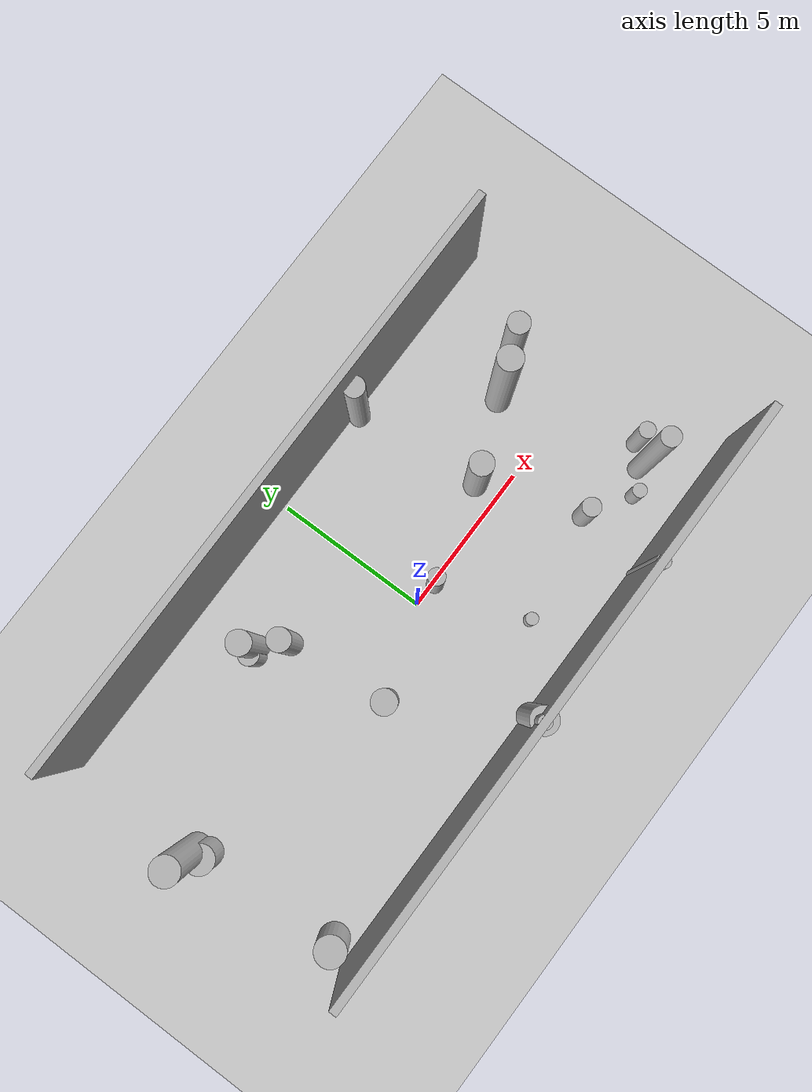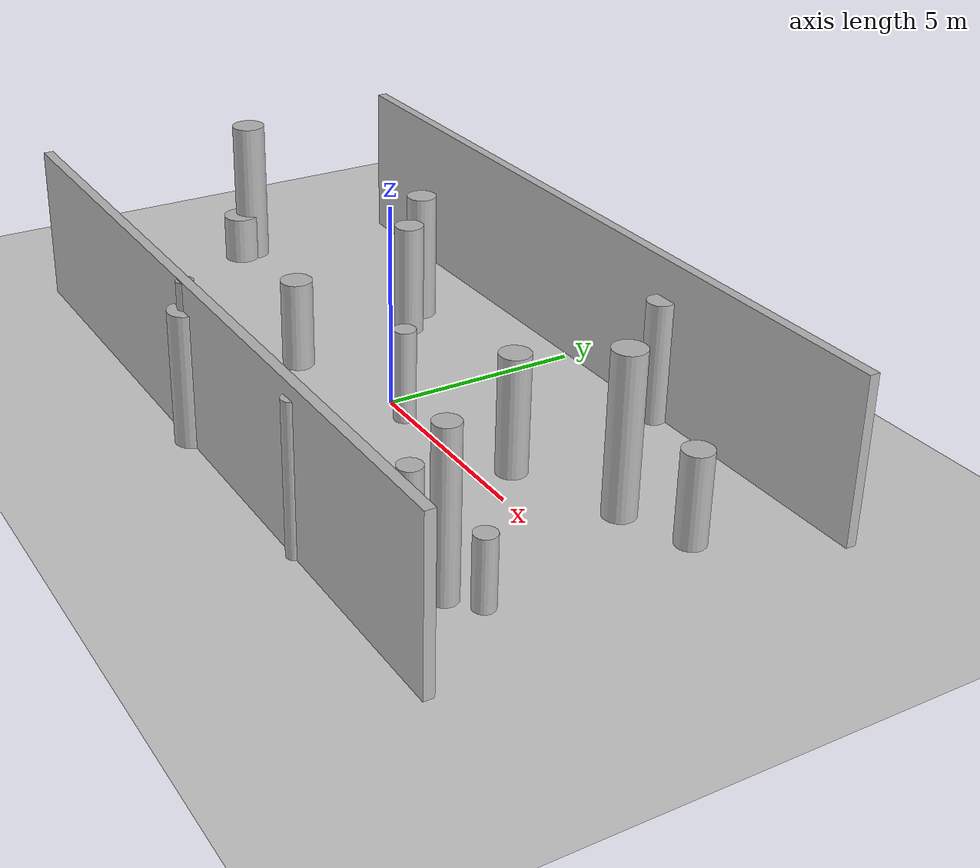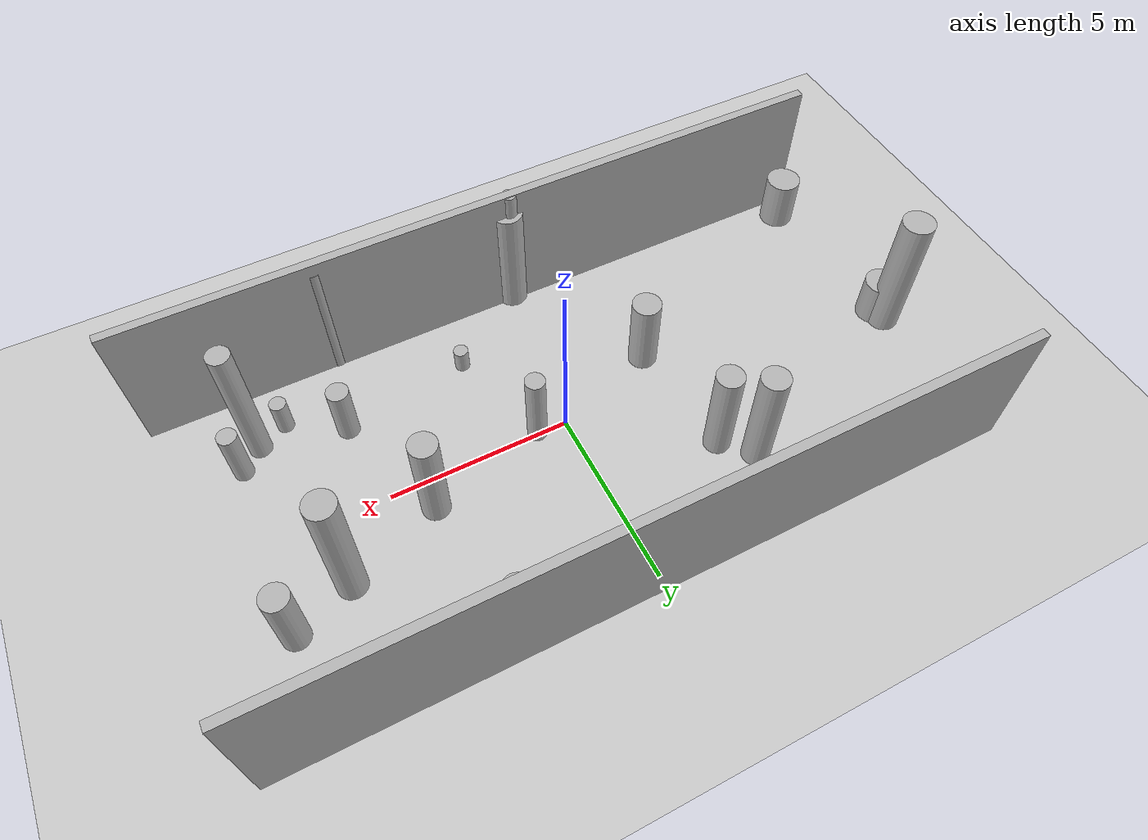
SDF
<?xml version="1.0"?>
<sdf version="1.4">
  <world name="default">
    <gui>
      <camera name="user_camera">
        <pose>-20 -30 40 0 0.66 0.83</pose>
      </camera>
    </gui>
    <include>
      <uri>model://ground_plane</uri>
    </include>
    <include>
      <uri>model://sun</uri>
    </include>
    <scene>
      <shadows>0</shadows>
    </scene>
    <model name="forest">
      <static>true</static>
      <link name="cylinder0">
        <pose>-4.22140195256995 2.9693953491330607 0.7673654700417909 0 0 0 </pose>
        <visual name="visual">
          <geometry>
            <cylinder>
              <radius>0.32513270754656387</radius>
              <length>1.5347309400835818</length>
            </cylinder>
          </geometry>
        </visual>
        <collision name="collision">
          <geometry>
            <cylinder>
              <radius>0.32513270754656387</radius>
              <length>1.5347309400835818</length>
            </cylinder>
          </geometry>
          <max_contacts>0</max_contacts>
        </collision>
      </link>
      <link name="cylinder1">
        <pose>6.69936217976251 -3.3379592736394126 0.5155097487495023 0 0 0 </pose>
        <visual name="visual">
          <geometry>
            <cylinder>
              <radius>0.22483915440210314</radius>
              <length>1.0310194974990046</length>
            </cylinder>
          </geometry>
        </visual>
        <collision name="collision">
          <geometry>
            <cylinder>
              <radius>0.22483915440210314</radius>
              <length>1.0310194974990046</length>
            </cylinder>
          </geometry>
          <max_contacts>0</max_contacts>
        </collision>
      </link>
      <link name="cylinder2">
        <pose>-3.980499537961057 3.118205004564091 1.6649322518250929 0 0 0 </pose>
        <visual name="visual">
          <geometry>
            <cylinder>
              <radius>0.37755121959288984</radius>
              <length>3.3298645036501857</length>
            </cylinder>
          </geometry>
        </visual>
        <collision name="collision">
          <geometry>
            <cylinder>
              <radius>0.37755121959288984</radius>
              <length>3.3298645036501857</length>
            </cylinder>
          </geometry>
          <max_contacts>0</max_contacts>
        </collision>
      </link>
      <link name="cylinder3">
        <pose>7.501450399276273 -2.94772788276802 1.9937623455073665 0 0 0 </pose>
        <visual name="visual">
          <geometry>
            <cylinder>
              <radius>0.3032298284374912</radius>
              <length>3.987524691014733</length>
            </cylinder>
          </geometry>
        </visual>
        <collision name="collision">
          <geometry>
            <cylinder>
              <radius>0.3032298284374912</radius>
              <length>3.987524691014733</length>
            </cylinder>
          </geometry>
          <max_contacts>0</max_contacts>
        </collision>
      </link>
      <link name="cylinder4">
        <pose>0.8125476591777119 -0.07397704593186116 1.1627956550477658 0 0 0 </pose>
        <visual name="visual">
          <geometry>
            <cylinder>
              <radius>0.26908365494539116</radius>
              <length>2.3255913100955317</length>
            </cylinder>
          </geometry>
        </visual>
        <collision name="collision">
          <geometry>
            <cylinder>
              <radius>0.26908365494539116</radius>
              <length>2.3255913100955317</length>
            </cylinder>
          </geometry>
          <max_contacts>0</max_contacts>
        </collision>
      </link>
      <link name="cylinder5">
        <pose>-9.462119491491059 -4.007179068391496 0.7569061786253588 0 0 0 </pose>
        <visual name="visual">
          <geometry>
            <cylinder>
              <radius>0.48685774095511075</radius>
              <length>1.5138123572507176</length>
            </cylinder>
          </geometry>
        </visual>
        <collision name="collision">
          <geometry>
            <cylinder>
              <radius>0.48685774095511075</radius>
              <length>1.5138123572507176</length>
            </cylinder>
          </geometry>
          <max_contacts>0</max_contacts>
        </collision>
      </link>
      <link name="cylinder6">
        <pose>-3.2734318728813117 2.3511744955764655 1.4586800079420188 0 0 0 </pose>
        <visual name="visual">
          <geometry>
            <cylinder>
              <radius>0.3671709679027445</radius>
              <length>2.9173600158840376</length>
            </cylinder>
          </geometry>
        </visual>
        <collision name="collision">
          <geometry>
            <cylinder>
              <radius>0.3671709679027445</radius>
              <length>2.9173600158840376</length>
            </cylinder>
          </geometry>
          <max_contacts>0</max_contacts>
        </collision>
      </link>
      <link name="cylinder7">
        <pose>1.6878064776093016 -3.051773990040396 0.3340564758809802 0 0 0 </pose>
        <visual name="visual">
          <geometry>
            <cylinder>
              <radius>0.20196803302084876</radius>
              <length>0.6681129517619604</length>
            </cylinder>
          </geometry>
        </visual>
        <collision name="collision">
          <geometry>
            <cylinder>
              <radius>0.20196803302084876</radius>
              <length>0.6681129517619604</length>
            </cylinder>
          </geometry>
          <max_contacts>0</max_contacts>
        </collision>
      </link>
      <link name="cylinder8">
        <pose>-0.6755875439413721 -4.791212237863608 1.650646823894981 0 0 0 </pose>
        <visual name="visual">
          <geometry>
            <cylinder>
              <radius>0.4250056165888985</radius>
              <length>3.301293647789962</length>
            </cylinder>
          </geometry>
        </visual>
        <collision name="collision">
          <geometry>
            <cylinder>
              <radius>0.4250056165888985</radius>
              <length>3.301293647789962</length>
            </cylinder>
          </geometry>
          <max_contacts>0</max_contacts>
        </collision>
      </link>
      <link name="cylinder9">
        <pose>-9.736262892410238 0.54559815762242 0.6384930433481346 0 0 0 </pose>
        <visual name="visual">
          <geometry>
            <cylinder>
              <radius>0.47432291091010453</radius>
              <length>1.2769860866962692</length>
            </cylinder>
          </geometry>
        </visual>
        <collision name="collision">
          <geometry>
            <cylinder>
              <radius>0.47432291091010453</radius>
              <length>1.2769860866962692</length>
            </cylinder>
          </geometry>
          <max_contacts>0</max_contacts>
        </collision>
      </link>
      <link name="cylinder10">
        <pose>3.652441770911656 4.983763364815868 1.5266805502251188 0 0 0 </pose>
        <visual name="visual">
          <geometry>
            <cylinder>
              <radius>0.3357606744758535</radius>
              <length>3.0533611004502377</length>
            </cylinder>
          </geometry>
        </visual>
        <collision name="collision">
          <geometry>
            <cylinder>
              <radius>0.3357606744758535</radius>
              <length>3.0533611004502377</length>
            </cylinder>
          </geometry>
          <max_contacts>0</max_contacts>
        </collision>
      </link>
      <link name="cylinder11">
        <pose>4.073772382316083 0.7968019498967358 1.4724915230352416 0 0 0 </pose>
        <visual name="visual">
          <geometry>
            <cylinder>
              <radius>0.37473341307175817</radius>
              <length>2.944983046070483</length>
            </cylinder>
          </geometry>
        </visual>
        <collision name="collision">
          <geometry>
            <cylinder>
              <radius>0.37473341307175817</radius>
              <length>2.944983046070483</length>
            </cylinder>
          </geometry>
          <max_contacts>0</max_contacts>
        </collision>
      </link>
      <link name="cylinder12">
        <pose>5.24399174432784 -2.4519851360586555 0.8629859475899062 0 0 0 </pose>
        <visual name="visual">
          <geometry>
            <cylinder>
              <radius>0.2984256126549073</radius>
              <length>1.7259718951798124</length>
            </cylinder>
          </geometry>
        </visual>
        <collision name="collision">
          <geometry>
            <cylinder>
              <radius>0.2984256126549073</radius>
              <length>1.7259718951798124</length>
            </cylinder>
          </geometry>
          <max_contacts>0</max_contacts>
        </collision>
      </link>
      <link name="cylinder13">
        <pose>6.667786776547132 1.8334058756549059 1.9737070764087732 0 0 0 </pose>
        <visual name="visual">
          <geometry>
            <cylinder>
              <radius>0.3935021010506933</radius>
              <length>3.9474141528175464</length>
            </cylinder>
          </geometry>
        </visual>
        <collision name="collision">
          <geometry>
            <cylinder>
              <radius>0.3935021010506933</radius>
              <length>3.9474141528175464</length>
            </cylinder>
          </geometry>
          <max_contacts>0</max_contacts>
        </collision>
      </link>
      <link name="cylinder14">
        <pose>8.263517062890063 2.473000882357562 1.1136085392339403 0 0 0 </pose>
        <visual name="visual">
          <geometry>
            <cylinder>
              <radius>0.35981302144921856</radius>
              <length>2.2272170784678806</length>
            </cylinder>
          </geometry>
        </visual>
        <collision name="collision">
          <geometry>
            <cylinder>
              <radius>0.35981302144921856</radius>
              <length>2.2272170784678806</length>
            </cylinder>
          </geometry>
          <max_contacts>0</max_contacts>
        </collision>
      </link>
      <link name="cylinder15">
        <pose>8.098638636930573 -2.41676983285135 0.8555880080313016 0 0 0 </pose>
        <visual name="visual">
          <geometry>
            <cylinder>
              <radius>0.26034933774699187</radius>
              <length>1.7111760160626033</length>
            </cylinder>
          </geometry>
        </visual>
        <collision name="collision">
          <geometry>
            <cylinder>
              <radius>0.26034933774699187</radius>
              <length>1.7111760160626033</length>
            </cylinder>
          </geometry>
          <max_contacts>0</max_contacts>
        </collision>
      </link>
      <link name="cylinder16">
        <pose>-2.922267416764079 -1.0102281425887782 1.14236389939572 0 0 0 </pose>
        <visual name="visual">
          <geometry>
            <cylinder>
              <radius>0.3972091359699262</radius>
              <length>2.28472779879144</length>
            </cylinder>
          </geometry>
        </visual>
        <collision name="collision">
          <geometry>
            <cylinder>
              <radius>0.3972091359699262</radius>
              <length>2.28472779879144</length>
            </cylinder>
          </geometry>
          <max_contacts>0</max_contacts>
        </collision>
      </link>
      <link name="cylinder17">
        <pose>-9.815668924181962 0.9125863107409291 1.9189480281497264 0 0 0 </pose>
        <visual name="visual">
          <geometry>
            <cylinder>
              <radius>0.4412135620062479</radius>
              <length>3.837896056299453</length>
            </cylinder>
          </geometry>
        </visual>
        <collision name="collision">
          <geometry>
            <cylinder>
              <radius>0.4412135620062479</radius>
              <length>3.837896056299453</length>
            </cylinder>
          </geometry>
          <max_contacts>0</max_contacts>
        </collision>
      </link>
      <link name="cylinder18">
        <pose>-0.7436216783738878 -4.742511883173259 1.9845708134905662 0 0 0 </pose>
        <visual name="visual">
          <geometry>
            <cylinder>
              <radius>0.20585398108236885</radius>
              <length>3.9691416269811324</length>
            </cylinder>
          </geometry>
        </visual>
        <collision name="collision">
          <geometry>
            <cylinder>
              <radius>0.20585398108236885</radius>
              <length>3.9691416269811324</length>
            </cylinder>
          </geometry>
          <max_contacts>0</max_contacts>
        </collision>
      </link>
      <link name="cylinder19">
        <pose>4.702472114313778 -4.806185749537634 1.8220203051447879 0 0 0 </pose>
        <visual name="visual">
          <geometry>
            <cylinder>
              <radius>0.2148194306744898</radius>
              <length>3.6440406102895757</length>
            </cylinder>
          </geometry>
        </visual>
        <collision name="collision">
          <geometry>
            <cylinder>
              <radius>0.2148194306744898</radius>
              <length>3.6440406102895757</length>
            </cylinder>
          </geometry>
          <max_contacts>0</max_contacts>
        </collision>
      </link>
      <link name="cube0">
        <pose>0 5.25 2.0 0 0 0 </pose>
        <visual name="visual">
          <geometry>
            <box>
              <size>20 0.25 4.0</size>
            </box>
          </geometry>
        </visual>
        <collision name="collision">
          <geometry>
            <box>
              <size>20 0.25 4.0</size>
            </box>
          </geometry>
          <max_contacts>0</max_contacts>
        </collision>
      </link>
      <link name="cube1">
        <pose>0 -4.75 2.0 0 0 0 </pose>
        <visual name="visual">
          <geometry>
            <box>
              <size>20 0.25 4.0</size>
            </box>
          </geometry>
        </visual>
        <collision name="collision">
          <geometry>
            <box>
              <size>20 0.25 4.0</size>
            </box>
          </geometry>
          <max_contacts>0</max_contacts>
        </collision>
      </link>
    </model>
    <!-- Plugins -->
    <plugin name="gazebo_octomap" filename="librotors_gazebo_octomap_plugin.so"/>
    <plugin name="ros_interface_plugin" filename="librotors_gazebo_ros_interface_plugin.so"/>
    <!-- Physics -->
    <physics name="default_physics" default="0" type="ode">
      <max_step_size>0.004</max_step_size>
      <real_time_factor>1</real_time_factor>
      <real_time_update_rate>250</real_time_update_rate>
      <gravity>0 0 -9.8</gravity>
      <magnetic_field>6e-06 2.3e-05 -4.2e-05</magnetic_field>
      <ode>
        <solver>
          <type>quick</type>
          <iters>1000</iters>
          <sor>1.3</sor>
          <use_dynamic_moi_rescaling>0</use_dynamic_moi_rescaling>
        </solver>
        <constraints>
          <cfm>0</cfm>
          <erp>0.2</erp>
          <contact_max_correcting_vel>100</contact_max_correcting_vel>
          <contact_surface_layer>0.001</contact_surface_layer>
        </constraints>
      </ode>
    </physics>
  </world>
</sdf>
